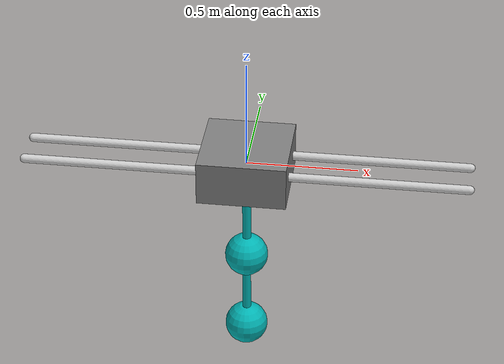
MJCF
<mujoco model="cart_pole">
	<compiler inertiafromgeom="true"/>
	<default>
		<joint armature="0" damping="0.05" limited="false"/>
		<geom contype="0" friction="1 0.1 0.1" rgba=" .8 .8 .8 1"/>
	</default>
	<option timestep="0.02" gravity="0 0 -9.81" integrator="RK4" />
	<size nstack="3000"/>
	<worldbody>
        <light directional="true" cutoff="4" exponent="20" diffuse="1 1 1" specular="0 0 0" pos=".9 .3 2.5" dir="-.9 -.3 -2.5 "/>
		<!--geom name="ground" type="plane" pos="0 0 0" /-->
		<geom name="rail1" pos="0 0.09 0" quat="0.707 0 0.707 0" size="0.02 1" type="capsule" />
        <geom name="rail2" pos="0 -0.09 0" quat="0.707 0 0.707 0" size="0.02 1" type="capsule" />
		<body name="cart" pos="0 0 0">
			<joint axis="1 0 0" limited="true" name="slider" pos="0 0 0" range="-1 1" type="slide"/>
			<geom name="cart" pos="0 0 0" quat="0.707 0 0.707 0" size="0.1 0.2 0.2" type="box" rgba=".5 .5 .5 1"/>
			<body name="pole1" pos="0 0 0">
				<joint axis="0 1 0" name="hinge1" pos="0 0 0" range="-90 90" type="hinge"/>
				<geom fromto="0 0 0 0.001 0 -0.5" name="cpole1" rgba="0 0.7 0.7 1" size="0.02 0.3" type="capsule" density="100"/>
                <geom type="sphere" size="0.1" name="ball1" rgba="0 0.7 0.7 1" pos="0 0 -0.5" />
                <body name="pole2" pos="0 0 -.5">
                    <joint axis="0 1 0" name="hinge2" pos="0 0 0" type="hinge" />
                    <geom fromto="0 0 0 0.001 0 -0.4" name="cpole2" rgba="0 0.7 0.7 1" size="0.02 0.3" type="capsule" density="100" />
                    <geom type="sphere" size="0.1" name="ball2" rgba="0 0.7 0.7 1" pos="0 0 -.4" />
                </body>
			</body>
		</body>
	</worldbody>
	<actuator>
		<motor gear="1" joint="slider" name="slide"/>
	</actuator>
</mujoco>
